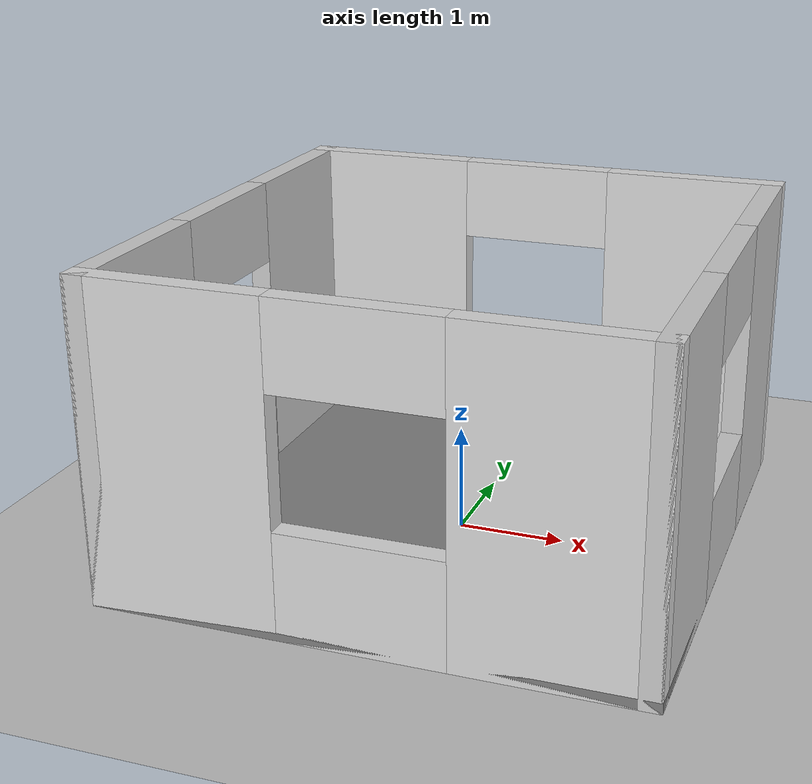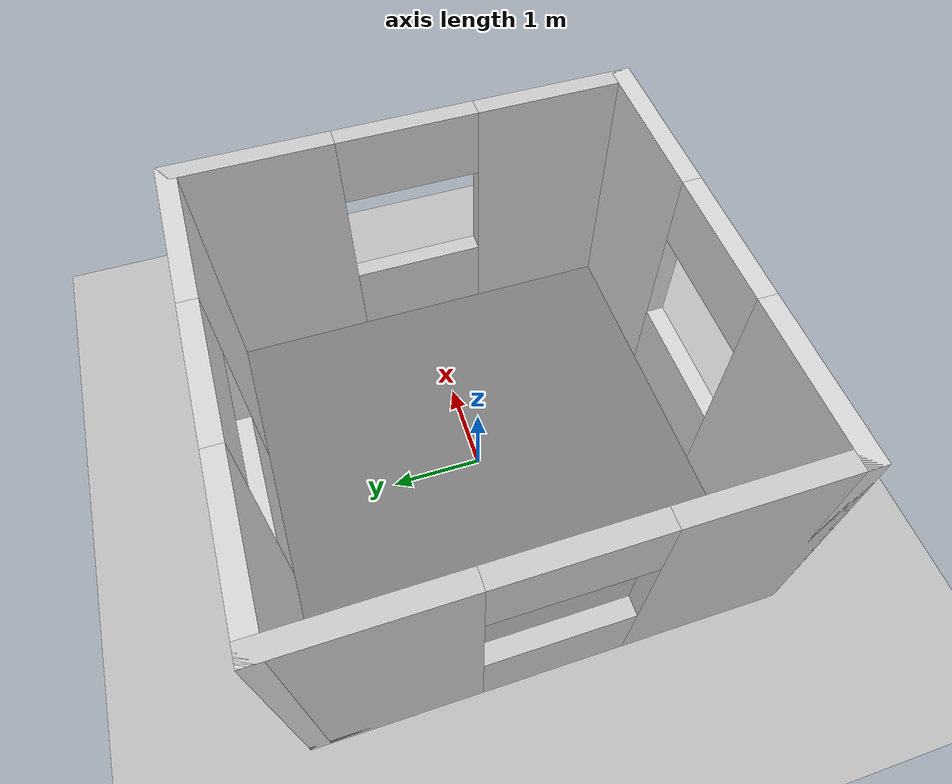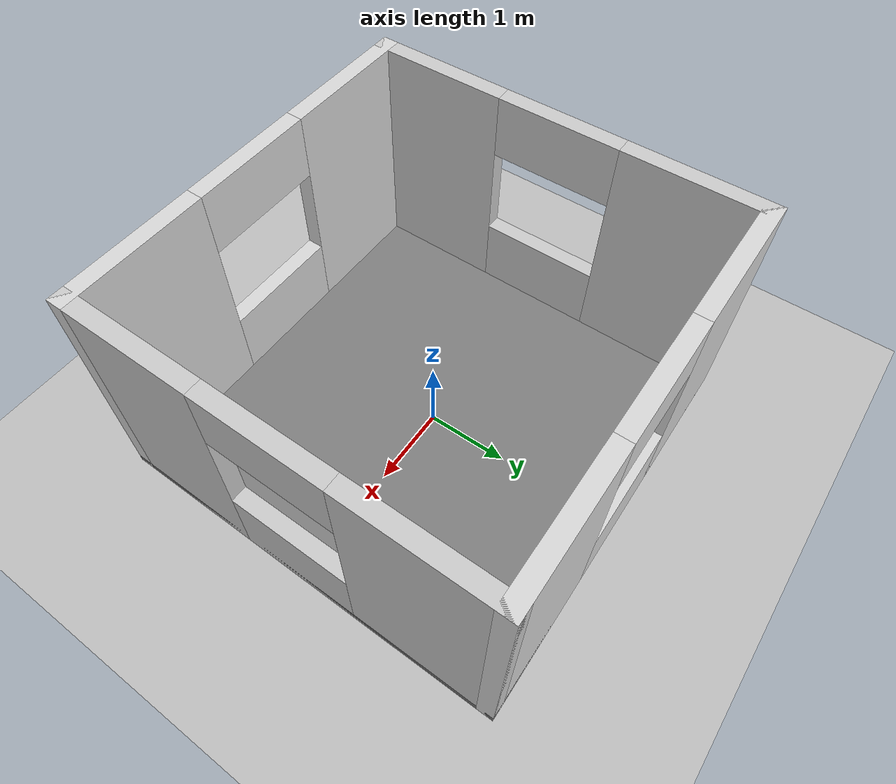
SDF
<?xml version="1.0" ?>
<sdf version="1.6">
  <world name="surveillance_building">

    <!-- ── Physics ─────────────────────────────────────────────── -->
    <physics name="default" default="true" type="ode">
      <max_step_size>0.002</max_step_size>
      <real_time_factor>1.0</real_time_factor>
      <real_time_update_rate>500</real_time_update_rate>
    </physics>

    <plugin
      filename="gz-sim-physics-system"
      name="gz::sim::systems::Physics">
    </plugin>

    <plugin
      filename="gz-sim-sensors-system"
      name="gz::sim::systems::Sensors">
    </plugin>

    <plugin
      filename="gz-sim-scene-broadcaster-system"
      name="gz::sim::systems::SceneBroadcaster">
    </plugin>

    <plugin
      filename="gz-sim-user-commands-system"
      name="gz::sim::systems::UserCommands">
    </plugin>

    <!-- ── Scene ──────────────────────────────────────────────── -->
    <scene>
      <ambient>0.6 0.6 0.6 1</ambient>
      <background>0.7 0.8 0.9 1</background>
      <shadows>true</shadows>
    </scene>

    <!-- ── Sun ────────────────────────────────────────────────── -->
    <light name="sun" type="directional">
      <cast_shadows>true</cast_shadows>
      <pose>0 0 10 0 0 0</pose>
      <diffuse>0.9 0.9 0.9 1</diffuse>
      <specular>0.1 0.1 0.1 1</specular>
      <direction>-0.5 0.1 -0.9</direction>
    </light>

    <!-- ── Ground Plane ───────────────────────────────────────── -->
    <model name="ground_plane">
      <static>true</static>
      <link name="link">
        <collision name="collision">
          <geometry>
            <plane>
              <normal>0 0 1</normal>
              <size>50 50</size>
            </plane>
          </geometry>
        </collision>
        <visual name="visual">
          <cast_shadows>false</cast_shadows>
          <geometry>
            <plane>
              <normal>0 0 1</normal>
              <size>50 50</size>
            </plane>
          </geometry>
          <material>
            <ambient>0.75 0.75 0.75 1</ambient>
            <diffuse>0.75 0.75 0.75 1</diffuse>
          </material>
        </visual>
      </link>
    </model>

    <model name="surveillance_building">
      <static>true</static>
      <pose>0 0 0 0 0 0</pose>

      <!-- ── Floor ──────────────────────────────────────────────
           5.0 × 5.0 m slab, 0.1 m thick. Top face at z = 0.1.
           ─────────────────────────────────────────────────────── -->
      <link name="floor">
        <pose>0 0 0.05 0 0 0</pose>
        <collision name="c">
          <geometry><box><size>5.0 5.0 0.1</size></box></geometry>
        </collision>
        <visual name="v">
          <geometry><box><size>5.0 5.0 0.1</size></box></geometry>
          <material>
            <ambient>0.50 0.50 0.50 1</ambient>
            <diffuse>0.50 0.50 0.50 1</diffuse>
          </material>
        </visual>
      </link>

      <!-- ══ NORTH WALL  (y = +2.4, outer face at y = +2.5) ══
           Runs along X-axis.
           ─────────────────────────────────────────────────────── -->

      <!-- Left column  x ∈ [−2.50, −0.75]  full height -->
      <link name="n_col_l">
        <pose>-1.625 2.4 1.5 0 0 0</pose>
        <collision name="c"><geometry><box><size>1.75 0.2 3.0</size></box></geometry></collision>
        <visual name="v">
          <geometry><box><size>1.75 0.2 3.0</size></box></geometry>
          <material><ambient>0.85 0.85 0.85 1</ambient><diffuse>0.85 0.85 0.85 1</diffuse></material>
        </visual>
      </link>

      <!-- Right column  x ∈ [+0.75, +2.50]  full height -->
      <link name="n_col_r">
        <pose>1.625 2.4 1.5 0 0 0</pose>
        <collision name="c"><geometry><box><size>1.75 0.2 3.0</size></box></geometry></collision>
        <visual name="v">
          <geometry><box><size>1.75 0.2 3.0</size></box></geometry>
          <material><ambient>0.85 0.85 0.85 1</ambient><diffuse>0.85 0.85 0.85 1</diffuse></material>
        </visual>
      </link>

      <!-- Bottom panel  x ∈ [−0.75, +0.75]  z ∈ [0.0, 1.0]  (sill) -->
      <link name="n_bot">
        <pose>0 2.4 0.5 0 0 0</pose>
        <collision name="c"><geometry><box><size>1.5 0.2 1.0</size></box></geometry></collision>
        <visual name="v">
          <geometry><box><size>1.5 0.2 1.0</size></box></geometry>
          <material><ambient>0.85 0.85 0.85 1</ambient><diffuse>0.85 0.85 0.85 1</diffuse></material>
        </visual>
      </link>

      <!-- Top panel  x ∈ [−0.75, +0.75]  z ∈ [2.2, 3.0]  (lintel) -->
      <link name="n_top">
        <pose>0 2.4 2.6 0 0 0</pose>
        <collision name="c"><geometry><box><size>1.5 0.2 0.8</size></box></geometry></collision>
        <visual name="v">
          <geometry><box><size>1.5 0.2 0.8</size></box></geometry>
          <material><ambient>0.85 0.85 0.85 1</ambient><diffuse>0.85 0.85 0.85 1</diffuse></material>
        </visual>
      </link>

      <!-- ══ SOUTH WALL  (y = −2.4, outer face at y = −2.5) ══ -->

      <link name="s_col_l">
        <pose>-1.625 -2.4 1.5 0 0 0</pose>
        <collision name="c"><geometry><box><size>1.75 0.2 3.0</size></box></geometry></collision>
        <visual name="v">
          <geometry><box><size>1.75 0.2 3.0</size></box></geometry>
          <material><ambient>0.85 0.85 0.85 1</ambient><diffuse>0.85 0.85 0.85 1</diffuse></material>
        </visual>
      </link>

      <link name="s_col_r">
        <pose>1.625 -2.4 1.5 0 0 0</pose>
        <collision name="c"><geometry><box><size>1.75 0.2 3.0</size></box></geometry></collision>
        <visual name="v">
          <geometry><box><size>1.75 0.2 3.0</size></box></geometry>
          <material><ambient>0.85 0.85 0.85 1</ambient><diffuse>0.85 0.85 0.85 1</diffuse></material>
        </visual>
      </link>

      <link name="s_bot">
        <pose>0 -2.4 0.5 0 0 0</pose>
        <collision name="c"><geometry><box><size>1.5 0.2 1.0</size></box></geometry></collision>
        <visual name="v">
          <geometry><box><size>1.5 0.2 1.0</size></box></geometry>
          <material><ambient>0.85 0.85 0.85 1</ambient><diffuse>0.85 0.85 0.85 1</diffuse></material>
        </visual>
      </link>

      <link name="s_top">
        <pose>0 -2.4 2.6 0 0 0</pose>
        <collision name="c"><geometry><box><size>1.5 0.2 0.8</size></box></geometry></collision>
        <visual name="v">
          <geometry><box><size>1.5 0.2 0.8</size></box></geometry>
          <material><ambient>0.85 0.85 0.85 1</ambient><diffuse>0.85 0.85 0.85 1</diffuse></material>
        </visual>
      </link>

      <!-- ══ EAST WALL  (x = +2.4, outer face at x = +2.5) ══
           Runs along Y-axis.  Size swaps x↔y vs N/S walls.
           ─────────────────────────────────────────────────────── -->

      <link name="e_col_l">
        <pose>2.4 -1.625 1.5 0 0 0</pose>
        <collision name="c"><geometry><box><size>0.2 1.75 3.0</size></box></geometry></collision>
        <visual name="v">
          <geometry><box><size>0.2 1.75 3.0</size></box></geometry>
          <material><ambient>0.80 0.80 0.80 1</ambient><diffuse>0.80 0.80 0.80 1</diffuse></material>
        </visual>
      </link>

      <link name="e_col_r">
        <pose>2.4 1.625 1.5 0 0 0</pose>
        <collision name="c"><geometry><box><size>0.2 1.75 3.0</size></box></geometry></collision>
        <visual name="v">
          <geometry><box><size>0.2 1.75 3.0</size></box></geometry>
          <material><ambient>0.80 0.80 0.80 1</ambient><diffuse>0.80 0.80 0.80 1</diffuse></material>
        </visual>
      </link>

      <link name="e_bot">
        <pose>2.4 0 0.5 0 0 0</pose>
        <collision name="c"><geometry><box><size>0.2 1.5 1.0</size></box></geometry></collision>
        <visual name="v">
          <geometry><box><size>0.2 1.5 1.0</size></box></geometry>
          <material><ambient>0.80 0.80 0.80 1</ambient><diffuse>0.80 0.80 0.80 1</diffuse></material>
        </visual>
      </link>

      <link name="e_top">
        <pose>2.4 0 2.6 0 0 0</pose>
        <collision name="c"><geometry><box><size>0.2 1.5 0.8</size></box></geometry></collision>
        <visual name="v">
          <geometry><box><size>0.2 1.5 0.8</size></box></geometry>
          <material><ambient>0.80 0.80 0.80 1</ambient><diffuse>0.80 0.80 0.80 1</diffuse></material>
        </visual>
      </link>

      <!-- ══ WEST WALL  (x = −2.4, outer face at x = −2.5) ══ -->

      <link name="w_col_l">
        <pose>-2.4 -1.625 1.5 0 0 0</pose>
        <collision name="c"><geometry><box><size>0.2 1.75 3.0</size></box></geometry></collision>
        <visual name="v">
          <geometry><box><size>0.2 1.75 3.0</size></box></geometry>
          <material><ambient>0.80 0.80 0.80 1</ambient><diffuse>0.80 0.80 0.80 1</diffuse></material>
        </visual>
      </link>

      <link name="w_col_r">
        <pose>-2.4 1.625 1.5 0 0 0</pose>
        <collision name="c"><geometry><box><size>0.2 1.75 3.0</size></box></geometry></collision>
        <visual name="v">
          <geometry><box><size>0.2 1.75 3.0</size></box></geometry>
          <material><ambient>0.80 0.80 0.80 1</ambient><diffuse>0.80 0.80 0.80 1</diffuse></material>
        </visual>
      </link>

      <link name="w_bot">
        <pose>-2.4 0 0.5 0 0 0</pose>
        <collision name="c"><geometry><box><size>0.2 1.5 1.0</size></box></geometry></collision>
        <visual name="v">
          <geometry><box><size>0.2 1.5 1.0</size></box></geometry>
          <material><ambient>0.80 0.80 0.80 1</ambient><diffuse>0.80 0.80 0.80 1</diffuse></material>
        </visual>
      </link>

      <link name="w_top">
        <pose>-2.4 0 2.6 0 0 0</pose>
        <collision name="c"><geometry><box><size>0.2 1.5 0.8</size></box></geometry></collision>
        <visual name="v">
          <geometry><box><size>0.2 1.5 0.8</size></box></geometry>
          <material><ambient>0.80 0.80 0.80 1</ambient><diffuse>0.80 0.80 0.80 1</diffuse></material>
        </visual>
      </link>

    </model>
    <!-- end surveillance_building -->

  </world>
</sdf>
